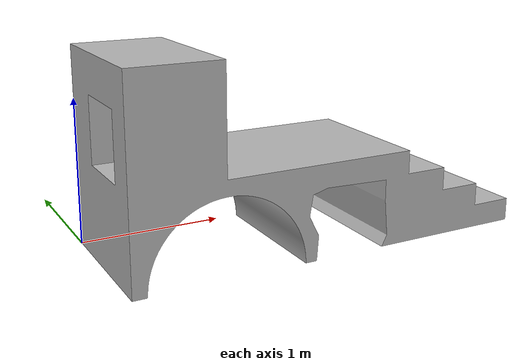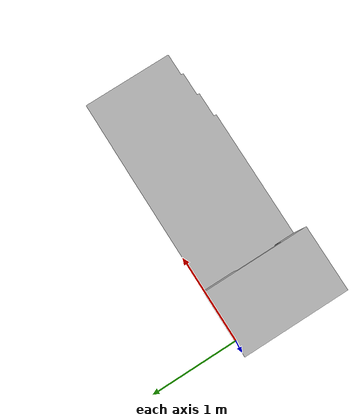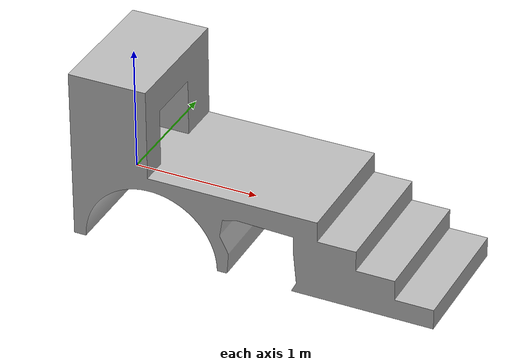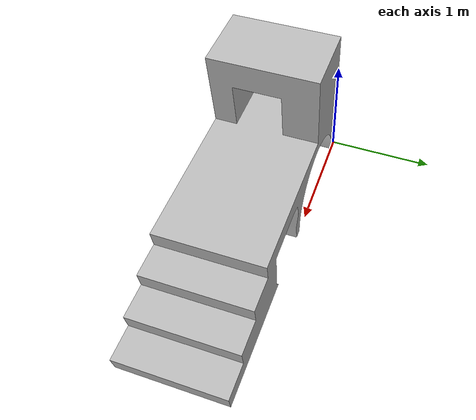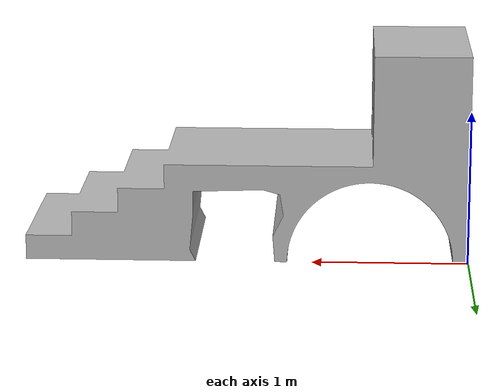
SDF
<?xml version="1.0" ?>
<sdf version="1.6">
  <model name="stair">
    <static>true</static>
    <link name="stair_link">
      <collision name="stair_collision">
        <geometry>
          <mesh>
            <uri>model://stair/stair.dae</uri>
          </mesh>
        </geometry>
      </collision>
      <visual name="stair_visual">
        <geometry>
          <mesh>
            <uri>model://stair/stair.dae</uri>
          </mesh>
        </geometry>
      </visual>
    </link>
  </model>
</sdf>
